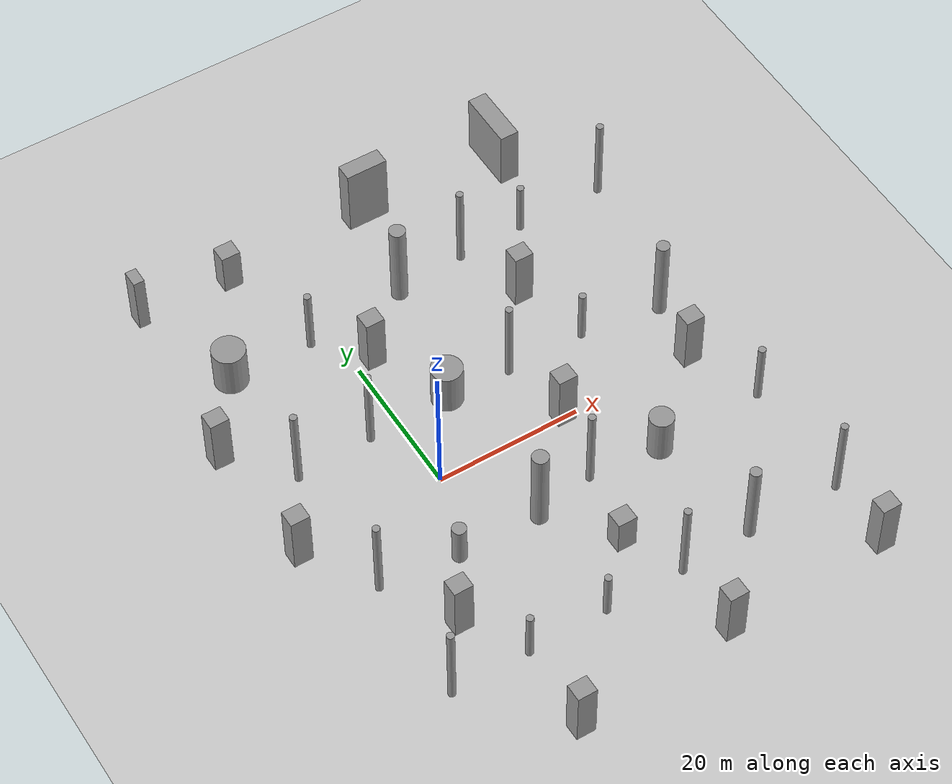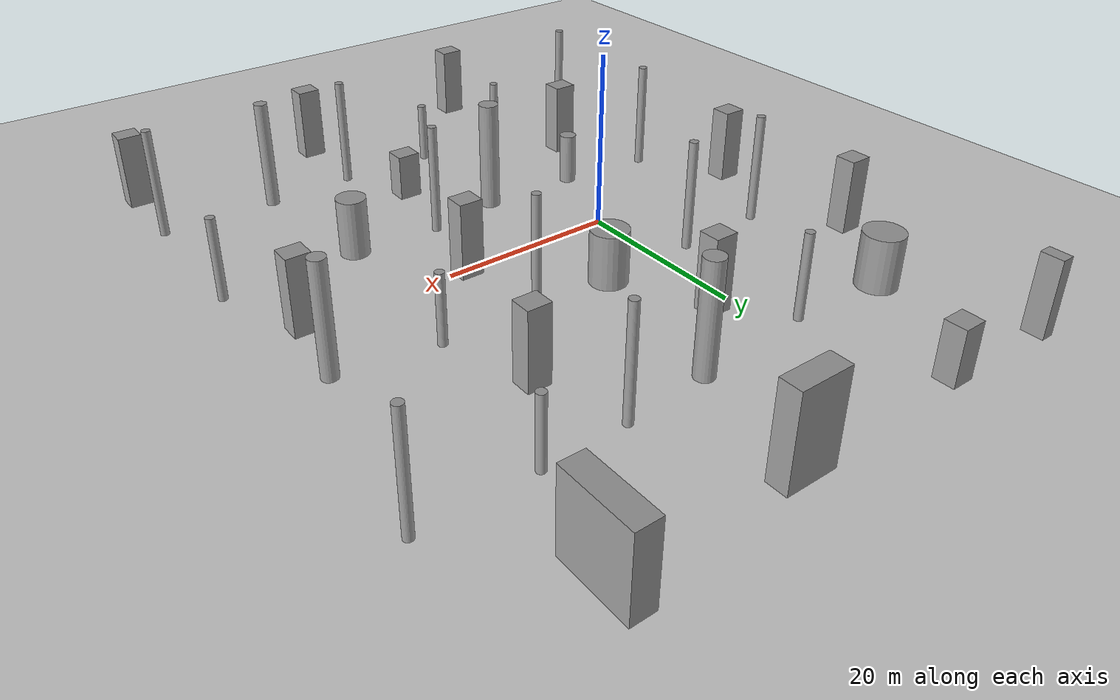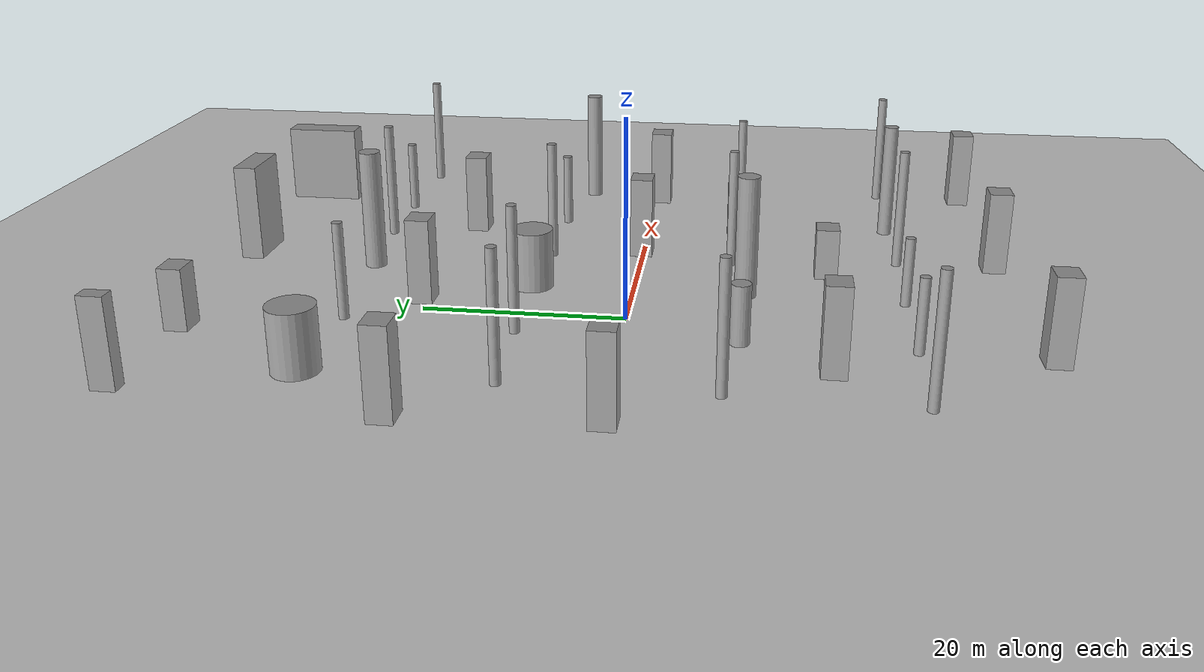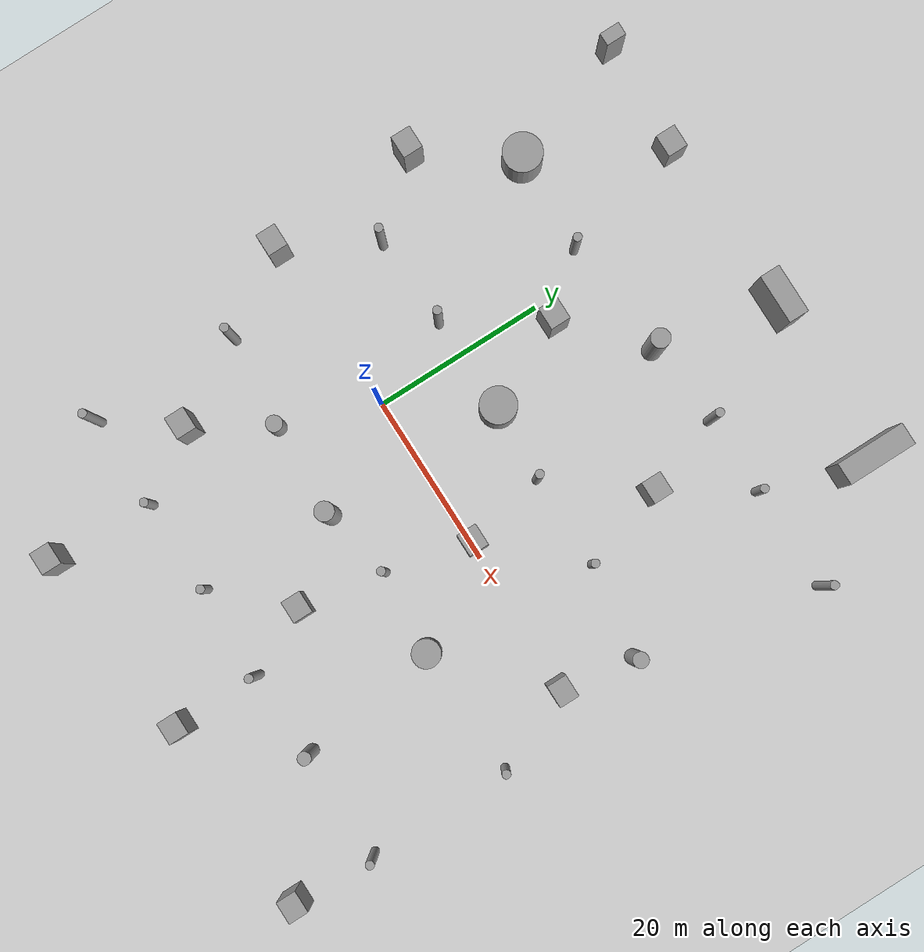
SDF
<sdf version="1.7">
 <world name="default">
  <include><uri>model://sun</uri></include>
  <include><uri>model://ground_plane</uri></include>
  <physics name="default_physics" default="0" type="ode">
   <gravity>0 0 -9.8066</gravity>
   <ode>
    <solver>
     <type>quick</type>
     <iters>10</iters>
     <sor>1.3</sor>
     <use_dynamic_moi_rescaling>0</use_dynamic_moi_rescaling>
    </solver>
    <constraints>
     <cfm>0</cfm>
     <erp>0.2</erp>
     <contact_max_correcting_vel>100</contact_max_correcting_vel>
     <contact_surface_layer>0.001</contact_surface_layer>
    </constraints>
   </ode>
   <max_step_size>0.004</max_step_size>
   <real_time_factor>1</real_time_factor>
   <real_time_update_rate>250</real_time_update_rate>
   <magnetic_field>6.0e-6 2.3e-5 -4.2e-5</magnetic_field>
  </physics>
  <model name="unit_cylinder">
   <pose>-14.4011 27.4124 3.11623 1e-06 1e-06 0.021789</pose>
   <link name="link">
    <inertial>
     <mass>1</mass>
     <inertia><ixx>0.145833</ixx><ixy>0</ixy><ixz>0</ixz><iyy>0.145833</iyy><iyz>0</iyz><izz>0.125</izz></inertia>
    </inertial>
    <collision name="collision">
     <geometry><cylinder><radius>2.25656</radius><length>6.23247</length></cylinder></geometry>
    </collision>
    <visual name="visual">
     <geometry><cylinder><radius>2.25656</radius><length>6.23247</length></cylinder></geometry>
     <material>
      <script><name>Gazebo/Grey</name><uri>file://media/materials/scripts/gazebo.material</uri></script>
     </material>
    </visual>
   </link>
  </model>
  <model name="unit_cylinder_clone">
   <pose>-3.03986 26.9885 4.88613 0 -0 0.023143</pose>
   <link name="link">
    <inertial>
     <mass>1</mass>
     <inertia><ixx>0.145833</ixx><ixy>0</ixy><ixz>0</ixz><iyy>0.145833</iyy><iyz>0</iyz><izz>0.125</izz></inertia>
    </inertial>
    <collision name="collision">
     <geometry><cylinder><radius>0.5</radius><length>9.77226</length></cylinder></geometry>
    </collision>
    <visual name="visual">
     <geometry><cylinder><radius>0.5</radius><length>9.77226</length></cylinder></geometry>
     <material>
      <script><name>Gazebo/Grey</name><uri>file://media/materials/scripts/gazebo.material</uri></script>
     </material>
    </visual>
   </link>
  </model>
  <model name="unit_cylinder_clone_0">
   <pose>10.9259 28.2075 6.30109 1e-06 1e-06 0.013127</pose>
   <link name="link">
    <inertial>
     <mass>1</mass>
     <inertia><ixx>0.145833</ixx><ixy>0</ixy><ixz>0</ixz><iyy>0.145833</iyy><iyz>0</iyz><izz>0.125</izz></inertia>
    </inertial>
    <collision name="collision">
     <geometry><cylinder><radius>1.10184</radius><length>12.6022</length></cylinder></geometry>
    </collision>
    <visual name="visual">
     <geometry><cylinder><radius>1.10184</radius><length>12.6022</length></cylinder></geometry>
     <material>
      <script><name>Gazebo/Grey</name><uri>file://media/materials/scripts/gazebo.material</uri></script>
     </material>
    </visual>
   </link>
  </model>
  <model name="unit_cylinder_clone_1">
   <pose>20.8231 29.2106 6.30109 0 -0 0.023529</pose>
   <link name="link">
    <inertial>
     <mass>1</mass>
     <inertia><ixx>0.145833</ixx><ixy>0</ixy><ixz>0</ixz><iyy>0.145833</iyy><iyz>0</iyz><izz>0.125</izz></inertia>
    </inertial>
    <collision name="collision">
     <geometry><cylinder><radius>0.5</radius><length>12.6022</length></cylinder></geometry>
    </collision>
    <visual name="visual">
     <geometry><cylinder><radius>0.5</radius><length>12.6022</length></cylinder></geometry>
     <material>
      <script><name>Gazebo/Grey</name><uri>file://media/materials/scripts/gazebo.material</uri></script>
     </material>
    </visual>
   </link>
  </model>
  <model name="unit_cylinder_clone_2">
   <pose>30.1826 29.4641 3.94455 0 -0 0.02112</pose>
   <link name="link">
    <inertial>
     <mass>1</mass>
     <inertia><ixx>0.145833</ixx><ixy>0</ixy><ixz>0</ixz><iyy>0.145833</iyy><iyz>0</iyz><izz>0.125</izz></inertia>
    </inertial>
    <collision name="collision">
     <geometry><cylinder><radius>0.5</radius><length>7.8891</length></cylinder></geometry>
    </collision>
    <visual name="visual">
     <geometry><cylinder><radius>0.5</radius><length>7.8891</length></cylinder></geometry>
     <material>
      <script><name>Gazebo/Grey</name><uri>file://media/materials/scripts/gazebo.material</uri></script>
     </material>
    </visual>
   </link>
  </model>
  <model name="unit_cylinder_clone_3">
   <pose>42.4158 29.4905 6.3011 0 -0 0.024186</pose>
   <link name="link">
    <inertial>
     <mass>1</mass>
     <inertia><ixx>0.145833</ixx><ixy>0</ixy><ixz>0</ixz><iyy>0.145833</iyy><iyz>0</iyz><izz>0.125</izz></inertia>
    </inertial>
    <collision name="collision">
     <geometry><cylinder><radius>0.5</radius><length>12.6022</length></cylinder></geometry>
    </collision>
    <visual name="visual">
     <geometry><cylinder><radius>0.5</radius><length>12.6022</length></cylinder></geometry>
     <material>
      <script><name>Gazebo/Grey</name><uri>file://media/materials/scripts/gazebo.material</uri></script>
     </material>
    </visual>
   </link>
  </model>
  <model name="unit_cylinder_clone_4">
   <pose>-14.7877 9.51481 6.3011 0 -0 0.022983</pose>
   <link name="link">
    <inertial>
     <mass>1</mass>
     <inertia><ixx>0.145833</ixx><ixy>0</ixy><ixz>0</ixz><iyy>0.145833</iyy><iyz>0</iyz><izz>0.125</izz></inertia>
    </inertial>
    <collision name="collision">
     <geometry><cylinder><radius>0.5</radius><length>12.6022</length></cylinder></geometry>
    </collision>
    <visual name="visual">
     <geometry><cylinder><radius>0.5</radius><length>12.6022</length></cylinder></geometry>
     <material>
      <script><name>Gazebo/Grey</name><uri>file://media/materials/scripts/gazebo.material</uri></script>
     </material>
    </visual>
   </link>
  </model>
  <model name="unit_cylinder_clone_5">
   <pose>-4.12835 10.0404 6.3011 0 -0 0.023026</pose>
   <link name="link">
    <inertial>
     <mass>1</mass>
     <inertia><ixx>0.145833</ixx><ixy>0</ixy><ixz>0</ixz><iyy>0.145833</iyy><iyz>0</iyz><izz>0.125</izz></inertia>
    </inertial>
    <collision name="collision">
     <geometry><cylinder><radius>0.5</radius><length>12.6022</length></cylinder></geometry>
    </collision>
    <visual name="visual">
     <geometry><cylinder><radius>0.5</radius><length>12.6022</length></cylinder></geometry>
     <material>
      <script><name>Gazebo/Grey</name><uri>file://media/materials/scripts/gazebo.material</uri></script>
     </material>
    </visual>
   </link>
  </model>
  <model name="unit_cylinder_clone_6">
   <pose>7.3285 10.4305 3.08438 0 -0 0.011524</pose>
   <link name="link">
    <inertial>
     <mass>1</mass>
     <inertia><ixx>0.145833</ixx><ixy>0</ixy><ixz>0</ixz><iyy>0.145833</iyy><iyz>0</iyz><izz>0.125</izz></inertia>
    </inertial>
    <collision name="collision">
     <geometry><cylinder><radius>2.11605</radius><length>6.16876</length></cylinder></geometry>
    </collision>
    <visual name="visual">
     <geometry><cylinder><radius>2.11605</radius><length>6.16876</length></cylinder></geometry>
     <material>
      <script><name>Gazebo/Grey</name><uri>file://media/materials/scripts/gazebo.material</uri></script>
     </material>
    </visual>
   </link>
  </model>
  <model name="unit_cylinder_clone_7">
   <pose>16.1448 9.84305 6.30109 0 -0 0.023014</pose>
   <link name="link">
    <inertial>
     <mass>1</mass>
     <inertia><ixx>0.145833</ixx><ixy>0</ixy><ixz>0</ixz><iyy>0.145833</iyy><iyz>0</iyz><izz>0.125</izz></inertia>
    </inertial>
    <collision name="collision">
     <geometry><cylinder><radius>0.5</radius><length>12.6022</length></cylinder></geometry>
    </collision>
    <visual name="visual">
     <geometry><cylinder><radius>0.5</radius><length>12.6022</length></cylinder></geometry>
     <material>
      <script><name>Gazebo/Grey</name><uri>file://media/materials/scripts/gazebo.material</uri></script>
     </material>
    </visual>
   </link>
  </model>
  <model name="unit_cylinder_clone_8">
   <pose>27.2049 9.95759 3.99525 0 -0 0.017732</pose>
   <link name="link">
    <inertial>
     <mass>1</mass>
     <inertia><ixx>0.145833</ixx><ixy>0</ixy><ixz>0</ixz><iyy>0.145833</iyy><iyz>0</iyz><izz>0.125</izz></inertia>
    </inertial>
    <collision name="collision">
     <geometry><cylinder><radius>0.5</radius><length>7.9905</length></cylinder></geometry>
    </collision>
    <visual name="visual">
     <geometry><cylinder><radius>0.5</radius><length>7.9905</length></cylinder></geometry>
     <material>
      <script><name>Gazebo/Grey</name><uri>file://media/materials/scripts/gazebo.material</uri></script>
     </material>
    </visual>
   </link>
  </model>
  <model name="unit_cylinder_clone_9">
   <pose>38.1018 8.27418 6.3011 0 -0 0.015409</pose>
   <link name="link">
    <inertial>
     <mass>1</mass>
     <inertia><ixx>0.145833</ixx><ixy>0</ixy><ixz>0</ixz><iyy>0.145833</iyy><iyz>0</iyz><izz>0.125</izz></inertia>
    </inertial>
    <collision name="collision">
     <geometry><cylinder><radius>0.89113</radius><length>12.6022</length></cylinder></geometry>
    </collision>
    <visual name="visual">
     <geometry><cylinder><radius>0.89113</radius><length>12.6022</length></cylinder></geometry>
     <material>
      <script><name>Gazebo/Grey</name><uri>file://media/materials/scripts/gazebo.material</uri></script>
     </material>
    </visual>
   </link>
  </model>
  <model name="unit_cylinder_clone_10">
   <pose>-14.5875 -9.76308 6.3011 0 -0 0.020422</pose>
   <link name="link">
    <inertial>
     <mass>1</mass>
     <inertia><ixx>0.145833</ixx><ixy>0</ixy><ixz>0</ixz><iyy>0.145833</iyy><iyz>0</iyz><izz>0.125</izz></inertia>
    </inertial>
    <collision name="collision">
     <geometry><cylinder><radius>0.5</radius><length>12.6022</length></cylinder></geometry>
    </collision>
    <visual name="visual">
     <geometry><cylinder><radius>0.5</radius><length>12.6022</length></cylinder></geometry>
     <material>
      <script><name>Gazebo/Grey</name><uri>file://media/materials/scripts/gazebo.material</uri></script>
     </material>
    </visual>
   </link>
  </model>
  <model name="unit_cylinder_clone_11">
   <pose>-3.97686 -10.9754 2.99112 0 -0 0.016</pose>
   <link name="link">
    <inertial>
     <mass>1</mass>
     <inertia><ixx>0.145833</ixx><ixy>0</ixy><ixz>0</ixz><iyy>0.145833</iyy><iyz>0</iyz><izz>0.125</izz></inertia>
    </inertial>
    <collision name="collision">
     <geometry><cylinder><radius>0.948625</radius><length>5.98223</length></cylinder></geometry>
    </collision>
    <visual name="visual">
     <geometry><cylinder><radius>0.948625</radius><length>5.98223</length></cylinder></geometry>
     <material>
      <script><name>Gazebo/Grey</name><uri>file://media/materials/scripts/gazebo.material</uri></script>
     </material>
    </visual>
   </link>
  </model>
  <model name="unit_cylinder_clone_12">
   <pose>7.33784 -11.2301 6.3011 0 -0 0.003177</pose>
   <link name="link">
    <inertial>
     <mass>1</mass>
     <inertia><ixx>0.145833</ixx><ixy>0</ixy><ixz>0</ixz><iyy>0.145833</iyy><iyz>0</iyz><izz>0.125</izz></inertia>
    </inertial>
    <collision name="collision">
     <geometry><cylinder><radius>1.10664</radius><length>12.6022</length></cylinder></geometry>
    </collision>
    <visual name="visual">
     <geometry><cylinder><radius>1.10664</radius><length>12.6022</length></cylinder></geometry>
     <material>
      <script><name>Gazebo/Grey</name><uri>file://media/materials/scripts/gazebo.material</uri></script>
     </material>
    </visual>
   </link>
  </model>
  <model name="unit_cylinder_clone_13">
   <pose>15.8024 -9.56122 6.3011 0 -0 0.020962</pose>
   <link name="link">
    <inertial>
     <mass>1</mass>
     <inertia><ixx>0.145833</ixx><ixy>0</ixy><ixz>0</ixz><iyy>0.145833</iyy><iyz>0</iyz><izz>0.125</izz></inertia>
    </inertial>
    <collision name="collision">
     <geometry><cylinder><radius>0.5</radius><length>12.6022</length></cylinder></geometry>
    </collision>
    <visual name="visual">
     <geometry><cylinder><radius>0.5</radius><length>12.6022</length></cylinder></geometry>
     <material>
      <script><name>Gazebo/Grey</name><uri>file://media/materials/scripts/gazebo.material</uri></script>
     </material>
    </visual>
   </link>
  </model>
  <model name="unit_cylinder_clone_14">
   <pose>25.6424 -10.3966 3.34845 0 -0 0.014568</pose>
   <link name="link">
    <inertial>
     <mass>1</mass>
     <inertia><ixx>0.145833</ixx><ixy>0</ixy><ixz>0</ixz><iyy>0.145833</iyy><iyz>0</iyz><izz>0.125</izz></inertia>
    </inertial>
    <collision name="collision">
     <geometry><cylinder><radius>1.63262</radius><length>6.69691</length></cylinder></geometry>
    </collision>
    <visual name="visual">
     <geometry><cylinder><radius>1.63262</radius><length>6.69691</length></cylinder></geometry>
     <material>
      <script><name>Gazebo/Grey</name><uri>file://media/materials/scripts/gazebo.material</uri></script>
     </material>
    </visual>
   </link>
  </model>
  <model name="unit_cylinder_clone_15">
   <pose>40.7987 -9.97245 4.67502 0 -0 0.021107</pose>
   <link name="link">
    <inertial>
     <mass>1</mass>
     <inertia><ixx>0.145833</ixx><ixy>0</ixy><ixz>0</ixz><iyy>0.145833</iyy><iyz>0</iyz><izz>0.125</izz></inertia>
    </inertial>
    <collision name="collision">
     <geometry><cylinder><radius>0.5</radius><length>9.35006</length></cylinder></geometry>
    </collision>
    <visual name="visual">
     <geometry><cylinder><radius>0.5</radius><length>9.35006</length></cylinder></geometry>
     <material>
      <script><name>Gazebo/Grey</name><uri>file://media/materials/scripts/gazebo.material</uri></script>
     </material>
    </visual>
   </link>
  </model>
  <model name="unit_cylinder_clone_16">
   <pose>-14.912 -27.0714 6.3011 0 -0 0.021159</pose>
   <link name="link">
    <inertial>
     <mass>1</mass>
     <inertia><ixx>0.145833</ixx><ixy>0</ixy><ixz>0</ixz><iyy>0.145833</iyy><iyz>0</iyz><izz>0.125</izz></inertia>
    </inertial>
    <collision name="collision">
     <geometry><cylinder><radius>0.5</radius><length>12.6022</length></cylinder></geometry>
    </collision>
    <visual name="visual">
     <geometry><cylinder><radius>0.5</radius><length>12.6022</length></cylinder></geometry>
     <material>
      <script><name>Gazebo/Grey</name><uri>file://media/materials/scripts/gazebo.material</uri></script>
     </material>
    </visual>
   </link>
  </model>
  <model name="unit_cylinder_clone_17">
   <pose>-4.14386 -27.1161 3.75693 0 -0 0.016144</pose>
   <link name="link">
    <inertial>
     <mass>1</mass>
     <inertia><ixx>0.145833</ixx><ixy>0</ixy><ixz>0</ixz><iyy>0.145833</iyy><iyz>0</iyz><izz>0.125</izz></inertia>
    </inertial>
    <collision name="collision">
     <geometry><cylinder><radius>0.5</radius><length>7.51387</length></cylinder></geometry>
    </collision>
    <visual name="visual">
     <geometry><cylinder><radius>0.5</radius><length>7.51387</length></cylinder></geometry>
     <material>
      <script><name>Gazebo/Grey</name><uri>file://media/materials/scripts/gazebo.material</uri></script>
     </material>
    </visual>
   </link>
  </model>
  <model name="unit_cylinder_clone_18">
   <pose>6.89143 -27.012 3.54734 0 -0 0.015363</pose>
   <link name="link">
    <inertial>
     <mass>1</mass>
     <inertia><ixx>0.145833</ixx><ixy>0</ixy><ixz>0</ixz><iyy>0.145833</iyy><iyz>0</iyz><izz>0.125</izz></inertia>
    </inertial>
    <collision name="collision">
     <geometry><cylinder><radius>0.5</radius><length>7.0947</length></cylinder></geometry>
    </collision>
    <visual name="visual">
     <geometry><cylinder><radius>0.5</radius><length>7.0947</length></cylinder></geometry>
     <material>
      <script><name>Gazebo/Grey</name><uri>file://media/materials/scripts/gazebo.material</uri></script>
     </material>
    </visual>
   </link>
  </model>
  <model name="unit_cylinder_clone_19">
   <pose>17.8254 -27.138 6.3011 0 -0 0.020181</pose>
   <link name="link">
    <inertial>
     <mass>1</mass>
     <inertia><ixx>0.145833</ixx><ixy>0</ixy><ixz>0</ixz><iyy>0.145833</iyy><iyz>0</iyz><izz>0.125</izz></inertia>
    </inertial>
    <collision name="collision">
     <geometry><cylinder><radius>0.5</radius><length>12.6022</length></cylinder></geometry>
    </collision>
    <visual name="visual">
     <geometry><cylinder><radius>0.5</radius><length>12.6022</length></cylinder></geometry>
     <material>
      <script><name>Gazebo/Grey</name><uri>file://media/materials/scripts/gazebo.material</uri></script>
     </material>
    </visual>
   </link>
  </model>
  <model name="unit_cylinder_clone_20">
   <pose>27.9105 -26.6829 6.30109 0 -0 0.019297</pose>
   <link name="link">
    <inertial>
     <mass>1</mass>
     <inertia><ixx>0.145833</ixx><ixy>0</ixy><ixz>0</ixz><iyy>0.145833</iyy><iyz>0</iyz><izz>0.125</izz></inertia>
    </inertial>
    <collision name="collision">
     <geometry><cylinder><radius>0.7518</radius><length>12.6022</length></cylinder></geometry>
    </collision>
    <visual name="visual">
     <geometry><cylinder><radius>0.7518</radius><length>12.6022</length></cylinder></geometry>
     <material>
      <script><name>Gazebo/Grey</name><uri>file://media/materials/scripts/gazebo.material</uri></script>
     </material>
    </visual>
   </link>
  </model>
  <model name="unit_cylinder_clone_21">
   <pose>40.8272 -26.8052 6.3011 0 -0 0.019973</pose>
   <link name="link">
    <inertial>
     <mass>1</mass>
     <inertia><ixx>0.145833</ixx><ixy>0</ixy><ixz>0</ixz><iyy>0.145833</iyy><iyz>0</iyz><izz>0.125</izz></inertia>
    </inertial>
    <collision name="collision">
     <geometry><cylinder><radius>0.5</radius><length>12.6022</length></cylinder></geometry>
    </collision>
    <visual name="visual">
     <geometry><cylinder><radius>0.5</radius><length>12.6022</length></cylinder></geometry>
     <material>
      <script><name>Gazebo/Grey</name><uri>file://media/materials/scripts/gazebo.material</uri></script>
     </material>
    </visual>
   </link>
  </model>
  <model name="unit_box">
   <pose>-21.6217 17.2091 4.35732 0 1e-06 5.1e-05</pose>
   <link name="link">
    <inertial>
     <mass>1</mass>
     <inertia>
      <ixx>0.166667</ixx>
      <ixy>0</ixy>
      <ixz>0</ixz>
      <iyy>0.166667</iyy>
      <iyz>0</iyz>
      <izz>0.166667</izz>
     </inertia>
    </inertial>
    <collision name="collision"><geometry><box><size>2.63263 2.3549 8.71464</size></box></geometry></collision>
    <visual name="visual">
     <geometry><box><size>2.63263 2.3549 8.71464</size></box></geometry>
     <material>
      <script><name>Gazebo/Grey</name><uri>file://media/materials/scripts/gazebo.material</uri></script>
     </material>
    </visual>
   </link>
  </model>
  <model name="unit_box_clone">
   <pose>-20.4499 -0.601602 4.35732 0 1e-06 8.1e-05</pose>
   <link name="link">
    <inertial>
     <mass>1</mass>
     <inertia>
      <ixx>0.166667</ixx>
      <ixy>0</ixy>
      <ixz>0</ixz>
      <iyy>0.166667</iyy>
      <iyz>0</iyz>
      <izz>0.166667</izz>
     </inertia>
    </inertial>
    <collision name="collision"><geometry><box><size>2.63263 2.3549 8.71464</size></box></geometry></collision>
    <visual name="visual">
     <geometry><box><size>2.63263 2.3549 8.71464</size></box></geometry>
     <material>
      <script><name>Gazebo/Grey</name><uri>file://media/materials/scripts/gazebo.material</uri></script>
     </material>
    </visual>
   </link>
  </model>
  <model name="unit_box_clone_0">
   <pose>-9.08743 -19.2693 4.35732 0 -1e-06 8.2e-05</pose>
   <link name="link">
    <inertial>
     <mass>1</mass>
     <inertia>
      <ixx>0.166667</ixx>
      <ixy>0</ixy>
      <ixz>0</ixz>
      <iyy>0.166667</iyy>
      <iyz>0</iyz>
      <izz>0.166667</izz>
     </inertia>
    </inertial>
    <collision name="collision"><geometry><box><size>2.63263 2.3549 8.71464</size></box></geometry></collision>
    <visual name="visual">
     <geometry><box><size>2.63263 2.3549 8.71464</size></box></geometry>
     <material>
      <script><name>Gazebo/Grey</name><uri>file://media/materials/scripts/gazebo.material</uri></script>
     </material>
    </visual>
   </link>
  </model>
  <model name="unit_box_clone_1">
   <pose>-6.78522 41.6651 3.13285 0 -1e-06 -5.6e-05</pose>
   <link name="link">
    <inertial>
     <mass>1</mass>
     <inertia>
      <ixx>0.166667</ixx>
      <ixy>0</ixy>
      <ixz>0</ixz>
      <iyy>0.166667</iyy>
      <iyz>0</iyz>
      <izz>0.166667</izz>
     </inertia>
    </inertial>
    <collision name="collision"><geometry><box><size>2.63263 2.3549 6.2657</size></box></geometry></collision>
    <visual name="visual">
     <geometry><box><size>2.63263 2.3549 6.2657</size></box></geometry>
     <material>
      <script><name>Gazebo/Grey</name><uri>file://media/materials/scripts/gazebo.material</uri></script>
     </material>
    </visual>
   </link>
  </model>
  <model name="unit_box_clone_2">
   <pose>33.447 41.3809 4.35732 -1e-06 1e-06 -1.1e-05</pose>
   <link name="link">
    <inertial>
     <mass>1</mass>
     <inertia>
      <ixx>0.166667</ixx>
      <ixy>0</ixy>
      <ixz>0</ixz>
      <iyy>0.166667</iyy>
      <iyz>0</iyz>
      <izz>0.166667</izz>
     </inertia>
    </inertial>
    <collision name="collision"><geometry><box><size>2.63263 8.15259 8.71464</size></box></geometry></collision>
    <visual name="visual">
     <geometry><box><size>2.63263 8.15259 8.71464</size></box></geometry>
     <material>
      <script><name>Gazebo/Grey</name><uri>file://media/materials/scripts/gazebo.material</uri></script>
     </material>
    </visual>
   </link>
  </model>
  <model name="unit_box_clone_3">
   <pose>13.8928 42.1334 5.1038 -3e-06 -0 -0.001259</pose>
   <link name="link">
    <inertial>
     <mass>1</mass>
     <inertia>
      <ixx>0.166667</ixx>
      <ixy>0</ixy>
      <ixz>0</ixz>
      <iyy>0.166667</iyy>
      <iyz>0</iyz>
      <izz>0.166667</izz>
     </inertia>
    </inertial>
    <collision name="collision"><geometry><box><size>5.78349 2.3549 10.2076</size></box></geometry></collision>
    <visual name="visual">
     <geometry><box><size>5.78349 2.3549 10.2076</size></box></geometry>
     <material>
      <script><name>Gazebo/Grey</name><uri>file://media/materials/scripts/gazebo.material</uri></script>
     </material>
    </visual>
   </link>
  </model>
  <model name="unit_box_clone_4">
   <pose>18.1092 0.283419 4.35732 0 -1e-06 -6.9e-05</pose>
   <link name="link">
    <inertial>
     <mass>1</mass>
     <inertia>
      <ixx>0.166667</ixx>
      <ixy>0</ixy>
      <ixz>0</ixz>
      <iyy>0.166667</iyy>
      <iyz>0</iyz>
      <izz>0.166667</izz>
     </inertia>
    </inertial>
    <collision name="collision"><geometry><box><size>2.63263 2.3549 8.71464</size></box></geometry></collision>
    <visual name="visual">
     <geometry><box><size>2.63263 2.3549 8.71464</size></box></geometry>
     <material>
      <script><name>Gazebo/Grey</name><uri>file://media/materials/scripts/gazebo.material</uri></script>
     </material>
    </visual>
   </link>
  </model>
  <model name="unit_box_clone_5">
   <pose>36.7287 -0.265016 4.35732 -0 1e-06 -0.000149</pose>
   <link name="link">
    <inertial>
     <mass>1</mass>
     <inertia>
      <ixx>0.166667</ixx>
      <ixy>0</ixy>
      <ixz>0</ixz>
      <iyy>0.166667</iyy>
      <iyz>0</iyz>
      <izz>0.166667</izz>
     </inertia>
    </inertial>
    <collision name="collision"><geometry><box><size>2.63263 2.3549 8.71464</size></box></geometry></collision>
    <visual name="visual">
     <geometry><box><size>2.63263 2.3549 8.71464</size></box></geometry>
     <material>
      <script><name>Gazebo/Grey</name><uri>file://media/materials/scripts/gazebo.material</uri></script>
     </material>
    </visual>
   </link>
  </model>
  <model name="unit_box_clone_6">
   <pose>13.9594 -19.4844 2.6956 0 -1e-06 -6e-06</pose>
   <link name="link">
    <inertial>
     <mass>1</mass>
     <inertia>
      <ixx>0.166667</ixx>
      <ixy>0</ixy>
      <ixz>0</ixz>
      <iyy>0.166667</iyy>
      <iyz>0</iyz>
      <izz>0.166667</izz>
     </inertia>
    </inertial>
    <collision name="collision"><geometry><box><size>2.63263 2.3549 5.39121</size></box></geometry></collision>
    <visual name="visual">
     <geometry><box><size>2.63263 2.3549 5.39121</size></box></geometry>
     <material>
      <script><name>Gazebo/Grey</name><uri>file://media/materials/scripts/gazebo.material</uri></script>
     </material>
    </visual>
   </link>
  </model>
  <model name="unit_box_clone_7">
   <pose>-4.56037 -38.9755 4.35732 -0 1e-06 -0.000136</pose>
   <link name="link">
    <inertial>
     <mass>1</mass>
     <inertia>
      <ixx>0.166667</ixx>
      <ixy>0</ixy>
      <ixz>0</ixz>
      <iyy>0.166667</iyy>
      <iyz>0</iyz>
      <izz>0.166667</izz>
     </inertia>
    </inertial>
    <collision name="collision"><geometry><box><size>2.63263 2.3549 8.71464</size></box></geometry></collision>
    <visual name="visual">
     <geometry><box><size>2.63263 2.3549 8.71464</size></box></geometry>
     <material>
      <script><name>Gazebo/Grey</name><uri>file://media/materials/scripts/gazebo.material</uri></script>
     </material>
    </visual>
   </link>
  </model>
  <model name="unit_box_clone_8">
   <pose>17.8696 -37.1183 4.35732 0 -1e-06 -0.000139</pose>
   <link name="link">
    <inertial>
     <mass>1</mass>
     <inertia>
      <ixx>0.166667</ixx>
      <ixy>0</ixy>
      <ixz>0</ixz>
      <iyy>0.166667</iyy>
      <iyz>0</iyz>
      <izz>0.166667</izz>
     </inertia>
    </inertial>
    <collision name="collision"><geometry><box><size>2.63263 2.3549 8.71464</size></box></geometry></collision>
    <visual name="visual">
     <geometry><box><size>2.63263 2.3549 8.71464</size></box></geometry>
     <material>
      <script><name>Gazebo/Grey</name><uri>file://media/materials/scripts/gazebo.material</uri></script>
     </material>
    </visual>
   </link>
  </model>
  <model name="unit_box_clone_9">
   <pose>40.4877 -36.472 4.35732 0 -1e-06 -0.000139</pose>
   <link name="link">
    <inertial>
     <mass>1</mass>
     <inertia>
      <ixx>0.166667</ixx>
      <ixy>0</ixy>
      <ixz>0</ixz>
      <iyy>0.166667</iyy>
      <iyz>0</iyz>
      <izz>0.166667</izz>
     </inertia>
    </inertial>
    <collision name="collision"><geometry><box><size>2.63263 2.3549 8.71464</size></box></geometry></collision>
    <visual name="visual">
     <geometry><box><size>2.63263 2.3549 8.71464</size></box></geometry>
     <material>
      <script><name>Gazebo/Grey</name><uri>file://media/materials/scripts/gazebo.material</uri></script>
     </material>
    </visual>
   </link>
  </model>
  <model name="unit_box_clone_10">
   <pose>2.40975 20.6066 4.35732 0 -1e-06 -6.9e-05</pose>
   <link name="link">
    <inertial>
     <mass>1</mass>
     <inertia>
      <ixx>0.166667</ixx>
      <ixy>0</ixy>
      <ixz>0</ixz>
      <iyy>0.166667</iyy>
      <iyz>0</iyz>
      <izz>0.166667</izz>
     </inertia>
    </inertial>
    <collision name="collision"><geometry><box><size>2.63263 2.3549 8.71464</size></box></geometry></collision>
    <visual name="visual">
     <geometry><box><size>2.63263 2.3549 8.71464</size></box></geometry>
     <material>
      <script><name>Gazebo/Grey</name><uri>file://media/materials/scripts/gazebo.material</uri></script>
     </material>
    </visual>
   </link>
  </model>
  <model name="unit_box_clone_11">
   <pose>23.9682 19.8024 4.35732 0 -1e-06 -0.000134</pose>
   <link name="link">
    <inertial>
     <mass>1</mass>
     <inertia>
      <ixx>0.166667</ixx>
      <ixy>0</ixy>
      <ixz>0</ixz>
      <iyy>0.166667</iyy>
      <iyz>0</iyz>
      <izz>0.166667</izz>
     </inertia>
    </inertial>
    <collision name="collision"><geometry><box><size>2.63263 2.3549 8.71464</size></box></geometry></collision>
    <visual name="visual">
     <geometry><box><size>2.63263 2.3549 8.71464</size></box></geometry>
     <material>
      <script><name>Gazebo/Grey</name><uri>file://media/materials/scripts/gazebo.material</uri></script>
     </material>
    </visual>
   </link>
  </model>
  <model name="unit_box_clone_12">
   <pose>-19.5943 42.1447 4.35732 1e-06 -0 -0.000114</pose>
   <link name="link">
    <inertial>
     <mass>1</mass>
     <inertia>
      <ixx>0.166667</ixx>
      <ixy>0</ixy>
      <ixz>0</ixz>
      <iyy>0.166667</iyy>
      <iyz>0</iyz>
      <izz>0.166667</izz>
     </inertia>
    </inertial>
    <collision name="collision"><geometry><box><size>1.51031 2.3549 8.71464</size></box></geometry></collision>
    <visual name="visual">
     <geometry><box><size>1.51031 2.3549 8.71464</size></box></geometry>
     <material>
      <script><name>Gazebo/Grey</name><uri>file://media/materials/scripts/gazebo.material</uri></script>
     </material>
    </visual>
   </link>
  </model>
 </world>
</sdf>
